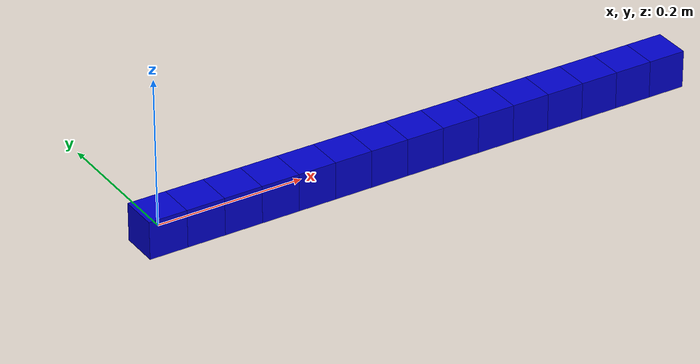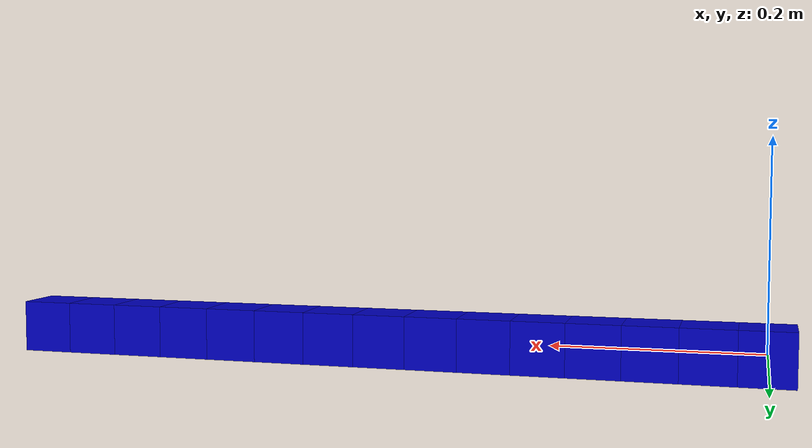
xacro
<?xml version="1.0"?>
<robot
  name="reusnake" xmlns:xacro="http://www.ros.org/wiki/xacro">
  <xacro:include filename="./snake_module.urdf.xacro"/>

    <link name="link0">
      <inertial>
        <origin
          xyz="0.026 0 0"
          rpy="0 0 0 " />
        <mass
          value="0.2" />
        <inertia
          ixx="0.00086666"
          ixy="0"
          ixz="0"
          iyy="0.00086666"
          iyz="0"
          izz="0.00086666" />
      </inertial>
      <visual>
        <geometry>
          <box size="0.052 0.052 0.052"/>
        </geometry>
        <material name="blue">
          <color rgba="0 0 .8 1"/>
        </material>
      </visual>
      <collision>
        <geometry>
          <box size="0.052 0.052 0.052"/>
        </geometry>
      </collision>
    </link>

    <joint
      name="joint1"
      type="revolute">
      <origin
        xyz="0.052 0 0"
        rpy="0     0 0" />
      <parent
        link="link0" />
      <child
        link="link1" />
      <axis
        xyz="0 0 1" />
      <dynamics
        damping=".1"
        friction="0.2"/>
      <limit
        effort="20.0"
        lower="${-pi}"
        upper="${pi}"
        velocity="3.14159265"/>
    </joint>

  <xacro:reusnake_module id="1" next_id="2" />
  <xacro:reusnake_module id="2" next_id="3" />
  <xacro:reusnake_module id="3" next_id="4" />
  <xacro:reusnake_module id="4" next_id="5" />
  <xacro:reusnake_module id="5" next_id="6" />
  <xacro:reusnake_module id="6" next_id="7" />
  <xacro:reusnake_module id="7" next_id="8" />
  <xacro:reusnake_module id="8" next_id="9" />
  <xacro:reusnake_module id="9" next_id="10" />
  <xacro:reusnake_module id="10" next_id="11" />
  <xacro:reusnake_module id="11" next_id="12" />
  <xacro:reusnake_module id="12" next_id="13" />
  <xacro:reusnake_module id="13" next_id="14" />

  <link name="link14">
  <inertial>
  <origin
      xyz="0.026 0 0"
      rpy="0 0 0 " />
  <mass
      value="0.2" />
  <inertia
      ixx="0.00086666"
      ixy="0"
      ixz="0"
      iyy="0.00086666"
      iyz="0"
      izz="0.00086666" />
  </inertial>
  <visual>
  <geometry>
      <box size="0.052 0.052 0.052"/>
  </geometry>
  <material name="blue">
      <color rgba="0 0 .8 1"/>
  </material>
  </visual>
  <collision>
  <geometry>
      <box size="0.052 0.052 0.052"/>
  </geometry>
  </collision>
  </link>

</robot>

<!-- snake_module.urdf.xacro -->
<robot xmlns:xacro="http://www.ros.org/wiki/xacro">
  <xacro:macro name="reusnake_module" params="id next_id">
    <link name="link${id}">
      <inertial>
        <origin
          xyz="0.026 0 0"
          rpy="0 0 0 " />
        <mass
          value="0.2" />
        <inertia
          ixx="0.00086666"
          ixy="0"
          ixz="0"
          iyy="0.00086666"
          iyz="0"
          izz="0.00086666" />
      </inertial>
      <visual>
        <geometry>
          <box size="0.052 0.052 0.052"/>
        </geometry>
        <material name="blue">
          <color rgba="0 0 .8 1"/>
        </material>
      </visual>
      <collision>
        <geometry>
          <box size="0.052 0.052 0.052"/>
        </geometry>
      </collision>
    </link>

    <joint
      name="joint${next_id}"
      type="revolute">
      <origin
        xyz="0.052 0 0"
        rpy="1.57079 0 0" />
      <parent
        link="link${id}" />
      <child
        link="link${next_id}" />
      <axis
        xyz="0 0 1" />
      <dynamics
        damping=".1"
        friction="0.2"/>
      <limit
        effort="20.0"
        lower="${-pi}"
        upper="${pi}"
        velocity="3.14159265"/>
    </joint>

    <transmission name="${id}_trans">
      <type>transmission_interface/SimpleTransmission</type>
      <joint name="joint${id}">
        <hardwareInterface>hardware_interface/EffortJointInterface</hardwareInterface>
      </joint>
      <actuator name="$joint${id}_motor">
        <hardwareInterface>hardware_interface/EffortJointInterface</hardwareInterface>
        <mechanicalReduction>300</mechanicalReduction>
      </actuator>
    </transmission>

  </xacro:macro>
</robot>
